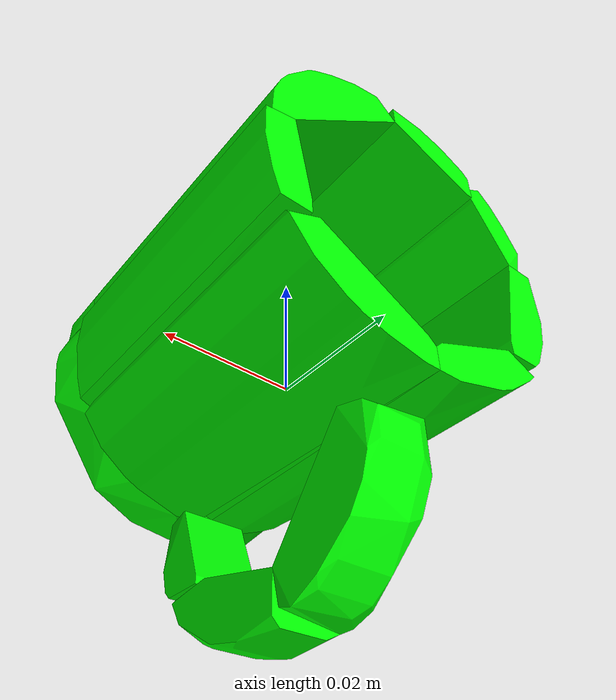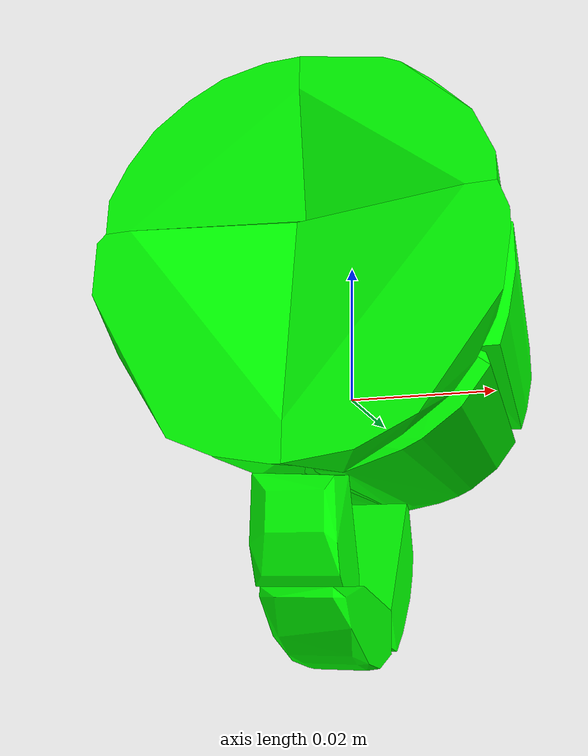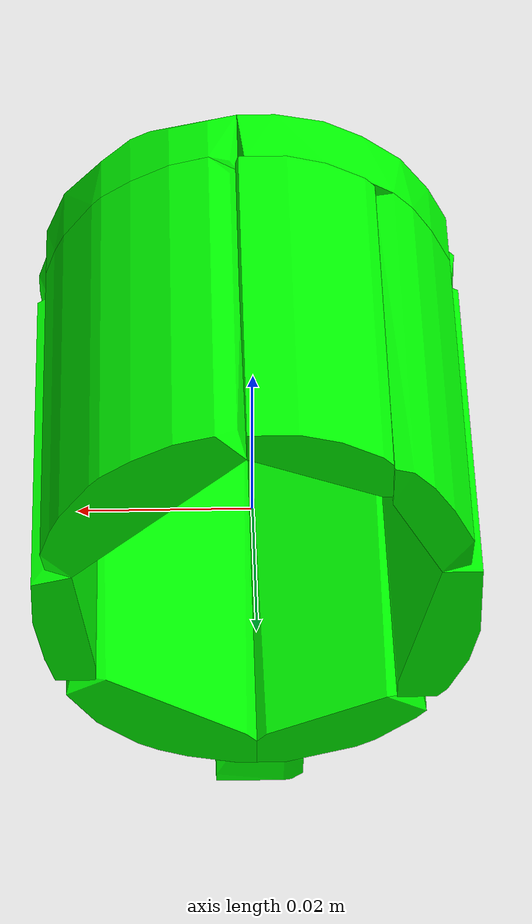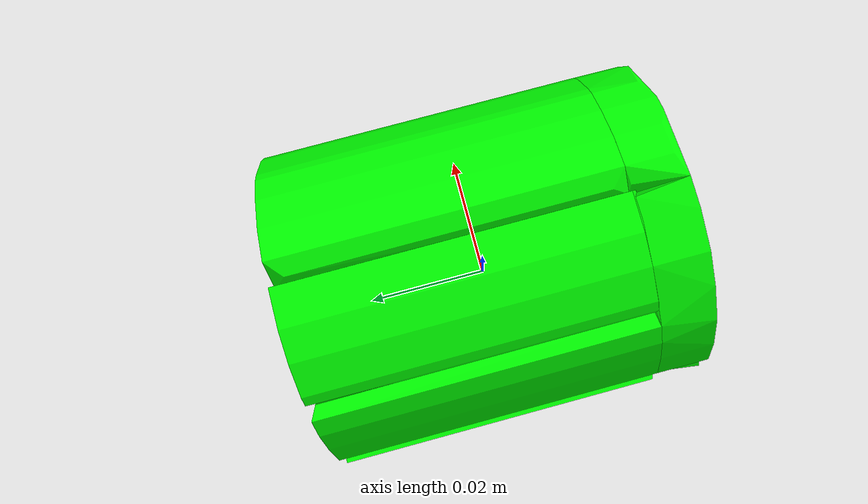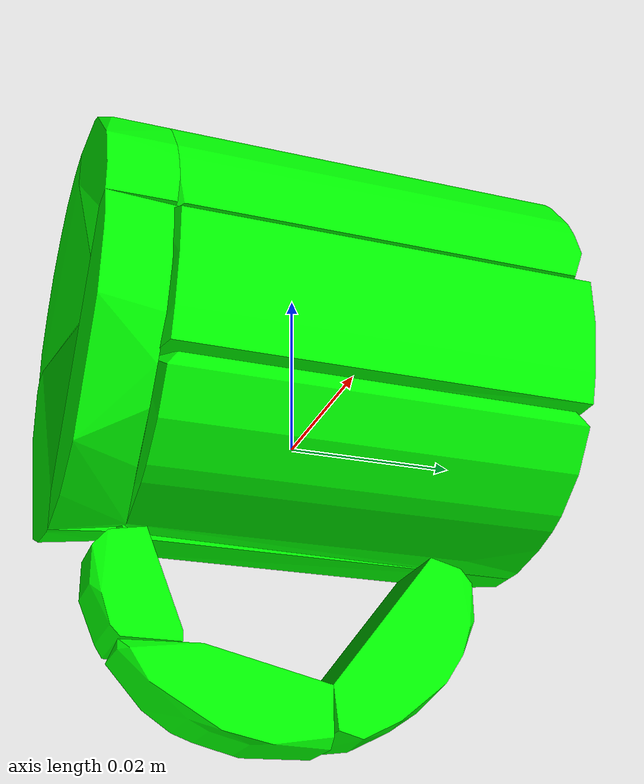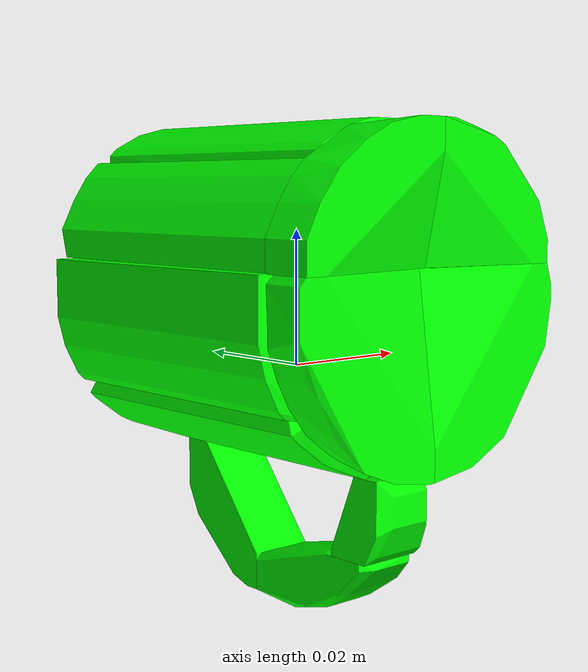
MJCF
<mujoco model="shapenet9-29">
  <asset>
    <mesh file="meshes/shapenet9-29/shapenet9-29_0.stl" name="shapenet9-29_0" scale="0.1 0.1 0.1"/>
    <mesh file="meshes/shapenet9-29/shapenet9-29_1.stl" name="shapenet9-29_1" scale="0.1 0.1 0.1"/>
    <mesh file="meshes/shapenet9-29/shapenet9-29_2.stl" name="shapenet9-29_2" scale="0.1 0.1 0.1"/>
    <mesh file="meshes/shapenet9-29/shapenet9-29_3.stl" name="shapenet9-29_3" scale="0.1 0.1 0.1"/>
    <mesh file="meshes/shapenet9-29/shapenet9-29_4.stl" name="shapenet9-29_4" scale="0.1 0.1 0.1"/>
    <mesh file="meshes/shapenet9-29/shapenet9-29_5.stl" name="shapenet9-29_5" scale="0.1 0.1 0.1"/>
    <mesh file="meshes/shapenet9-29/shapenet9-29_6.stl" name="shapenet9-29_6" scale="0.1 0.1 0.1"/>
    <mesh file="meshes/shapenet9-29/shapenet9-29_7.stl" name="shapenet9-29_7" scale="0.1 0.1 0.1"/>
    <mesh file="meshes/shapenet9-29/shapenet9-29_8.stl" name="shapenet9-29_8" scale="0.1 0.1 0.1"/>
    <mesh file="meshes/shapenet9-29/shapenet9-29_9.stl" name="shapenet9-29_9" scale="0.1 0.1 0.1"/>
    <mesh file="meshes/shapenet9-29/shapenet9-29_10.stl" name="shapenet9-29_10" scale="0.1 0.1 0.1"/>
    <mesh file="meshes/shapenet9-29/shapenet9-29_11.stl" name="shapenet9-29_11" scale="0.1 0.1 0.1"/>
    <mesh file="meshes/shapenet9-29/shapenet9-29_12.stl" name="shapenet9-29_12" scale="0.1 0.1 0.1"/>
    <mesh file="meshes/shapenet9-29/shapenet9-29_13.stl" name="shapenet9-29_13" scale="0.1 0.1 0.1"/>
  </asset>
  <worldbody>
    <body>
      <body name="collision">
        <geom pos="0 0 0" mesh="shapenet9-29_0" type="mesh" solimp="0.998 0.998 0.001" solref="0.001 1" density="100" friction="0.95 0.3 0.1" rgba="0 1 0 1" group="1" condim="4"/>
        <geom pos="0 0 0" mesh="shapenet9-29_1" type="mesh" solimp="0.998 0.998 0.001" solref="0.001 1" density="100" friction="0.95 0.3 0.1" rgba="0 1 0 1" group="1" condim="4"/>
        <geom pos="0 0 0" mesh="shapenet9-29_2" type="mesh" solimp="0.998 0.998 0.001" solref="0.001 1" density="100" friction="0.95 0.3 0.1" rgba="0 1 0 1" group="1" condim="4"/>
        <geom pos="0 0 0" mesh="shapenet9-29_3" type="mesh" solimp="0.998 0.998 0.001" solref="0.001 1" density="100" friction="0.95 0.3 0.1" rgba="0 1 0 1" group="1" condim="4"/>
        <geom pos="0 0 0" mesh="shapenet9-29_4" type="mesh" solimp="0.998 0.998 0.001" solref="0.001 1" density="100" friction="0.95 0.3 0.1" rgba="0 1 0 1" group="1" condim="4"/>
        <geom pos="0 0 0" mesh="shapenet9-29_5" type="mesh" solimp="0.998 0.998 0.001" solref="0.001 1" density="100" friction="0.95 0.3 0.1" rgba="0 1 0 1" group="1" condim="4"/>
        <geom pos="0 0 0" mesh="shapenet9-29_6" type="mesh" solimp="0.998 0.998 0.001" solref="0.001 1" density="100" friction="0.95 0.3 0.1" rgba="0 1 0 1" group="1" condim="4"/>
        <geom pos="0 0 0" mesh="shapenet9-29_7" type="mesh" solimp="0.998 0.998 0.001" solref="0.001 1" density="100" friction="0.95 0.3 0.1" rgba="0 1 0 1" group="1" condim="4"/>
        <geom pos="0 0 0" mesh="shapenet9-29_8" type="mesh" solimp="0.998 0.998 0.001" solref="0.001 1" density="100" friction="0.95 0.3 0.1" rgba="0 1 0 1" group="1" condim="4"/>
        <geom pos="0 0 0" mesh="shapenet9-29_9" type="mesh" solimp="0.998 0.998 0.001" solref="0.001 1" density="100" friction="0.95 0.3 0.1" rgba="0 1 0 1" group="1" condim="4"/>
        <geom pos="0 0 0" mesh="shapenet9-29_10" type="mesh" solimp="0.998 0.998 0.001" solref="0.001 1" density="100" friction="0.95 0.3 0.1" rgba="0 1 0 1" group="1" condim="4"/>
        <geom pos="0 0 0" mesh="shapenet9-29_11" type="mesh" solimp="0.998 0.998 0.001" solref="0.001 1" density="100" friction="0.95 0.3 0.1" rgba="0 1 0 1" group="1" condim="4"/>
        <geom pos="0 0 0" mesh="shapenet9-29_12" type="mesh" solimp="0.998 0.998 0.001" solref="0.001 1" density="100" friction="0.95 0.3 0.1" rgba="0 1 0 1" group="1" condim="4"/>
        <geom pos="0 0 0" mesh="shapenet9-29_13" type="mesh" solimp="0.998 0.998 0.001" solref="0.001 1" density="100" friction="0.95 0.3 0.1" rgba="0 1 0 1" group="1" condim="4"/>
      </body>
      <body name="visual">
        <geom pos="0 0 0" mesh="shapenet9-29_0" type="mesh" rgba="0 1 0 1" conaffinity="0" contype="0" group="0" mass="0.0001"/>
        <geom pos="0 0 0" mesh="shapenet9-29_1" type="mesh" rgba="0 1 0 1" conaffinity="0" contype="0" group="0" mass="0.0001"/>
        <geom pos="0 0 0" mesh="shapenet9-29_2" type="mesh" rgba="0 1 0 1" conaffinity="0" contype="0" group="0" mass="0.0001"/>
        <geom pos="0 0 0" mesh="shapenet9-29_3" type="mesh" rgba="0 1 0 1" conaffinity="0" contype="0" group="0" mass="0.0001"/>
        <geom pos="0 0 0" mesh="shapenet9-29_4" type="mesh" rgba="0 1 0 1" conaffinity="0" contype="0" group="0" mass="0.0001"/>
        <geom pos="0 0 0" mesh="shapenet9-29_5" type="mesh" rgba="0 1 0 1" conaffinity="0" contype="0" group="0" mass="0.0001"/>
        <geom pos="0 0 0" mesh="shapenet9-29_6" type="mesh" rgba="0 1 0 1" conaffinity="0" contype="0" group="0" mass="0.0001"/>
        <geom pos="0 0 0" mesh="shapenet9-29_7" type="mesh" rgba="0 1 0 1" conaffinity="0" contype="0" group="0" mass="0.0001"/>
        <geom pos="0 0 0" mesh="shapenet9-29_8" type="mesh" rgba="0 1 0 1" conaffinity="0" contype="0" group="0" mass="0.0001"/>
        <geom pos="0 0 0" mesh="shapenet9-29_9" type="mesh" rgba="0 1 0 1" conaffinity="0" contype="0" group="0" mass="0.0001"/>
        <geom pos="0 0 0" mesh="shapenet9-29_10" type="mesh" rgba="0 1 0 1" conaffinity="0" contype="0" group="0" mass="0.0001"/>
        <geom pos="0 0 0" mesh="shapenet9-29_11" type="mesh" rgba="0 1 0 1" conaffinity="0" contype="0" group="0" mass="0.0001"/>
        <geom pos="0 0 0" mesh="shapenet9-29_12" type="mesh" rgba="0 1 0 1" conaffinity="0" contype="0" group="0" mass="0.0001"/>
        <geom pos="0 0 0" mesh="shapenet9-29_13" type="mesh" rgba="0 1 0 1" conaffinity="0" contype="0" group="0" mass="0.0001"/>
      </body>
      <site rgba="0 0 0 0" size="0.005" pos="0 0 -0.06" name="bottom_site"/>
      <site rgba="0 0 0 0" size="0.005" pos="0 0 0.04" name="top_site"/>
      <site rgba="0 0 0 0" size="0.005" pos="0.025 0.025 0" name="horizontal_radius_site"/>
    </body>
  </worldbody>
</mujoco>
